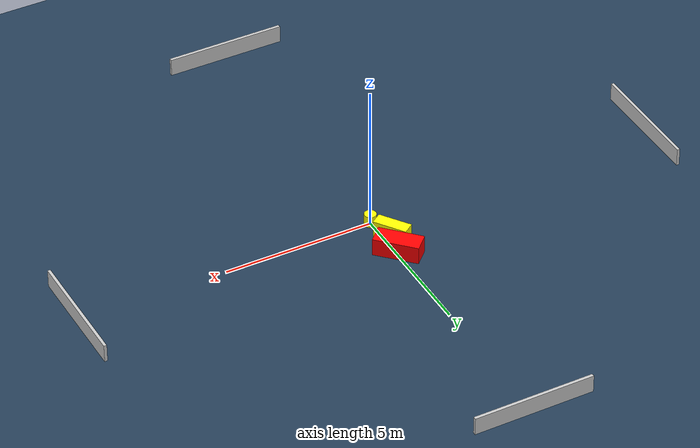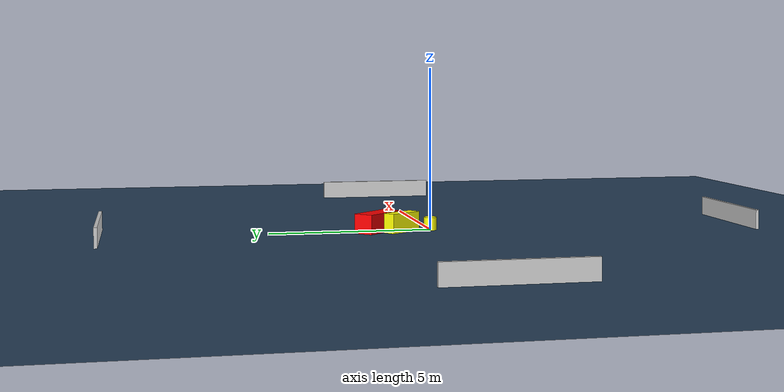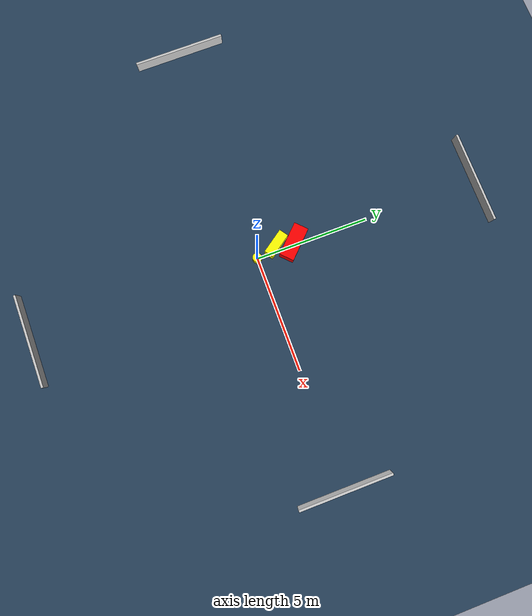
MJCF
<?xml version="1.0" ?>
<mujoco model="generated_environment">
  <option timestep="0.01" integrator="RK4" cone="elliptic"/>
  <default>
    <geom density="1"/>
  </default>
  <asset>
    <texture builtin="gradient" height="3072" name="skybox" rgb1="0.3 0.5 0.7" rgb2="0 0 0" type="skybox" width="512"/>
    <texture builtin="checker" height="300" name="groundplane" rgb1="0.2 0.3 0.4" rgb2="0.1 0.2 0.3" type="2d" width="300"/>
    <material name="groundplane" reflectance="0.2" texrepeat="5 5" texture="groundplane"/>
  </asset>
  <worldbody>
    <light dir="0 0 -1" directional="true" pos="0 0 1.5"/>
    <geom condim="3" friction="0.5 0.005 0.001" material="groundplane" name="floor" pos="0 0 0" size="0 0 0.05" type="plane"/>
    <body name="walls">
      <geom name="wall_1" condim="4" pos="-10.0 0.0 0.3" rgba="0.800000011920929 0.800000011920929 0.800000011920929 1.0" size="0.05 2.0 0.3" type="box"/>
      <geom name="wall_2" condim="4" pos="10.0 0.0 0.3" rgba="0.800000011920929 0.800000011920929 0.800000011920929 1.0" size="0.05 2.0 0.3" type="box"/>
      <geom name="wall_3" condim="4" pos="0.0 -10.0 0.3" rgba="0.800000011920929 0.800000011920929 0.800000011920929 1.0" size="2.0 0.05 0.3" type="box"/>
      <geom name="wall_4" condim="4" pos="0.0 10.0 0.3" rgba="0.800000011920929 0.800000011920929 0.800000011920929 1.0" size="2.0 0.05 0.3" type="box"/>
    </body>
    <body name="robot">
      <joint name="joint_x" type="slide" pos="0 0 0" axis="1 0 0"/>
      <joint name="joint_y" type="slide" pos="0 0 0" axis="0 1 0"/>
      <geom name="robot" type="cylinder" pos="0.0 0.0 0.2" size="0.2 0.2 0.0" mass="5.0" friction="1.0 0.005 0.0001" condim="4" rgba="1.0 1.0 0.0 1.0"/>
    </body>
    <body name="obstacle_1_movable">
      <geom name="obstacle_1_movable" condim="4" pos="-0.2570793087609669 0.9526826878452102 0.3" euler="0 0 304.98580439870904" friction="0.0 0.005 0.001" rgba="1.0 1.0 0.0 1.0" size="0.5628080162136455 0.20826753515272328 0.3" type="box" mass="0.1"/>
      <joint type="free"/>
    </body>
    <body name="obstacle_2_static">
      <geom name="obstacle_2_static" condim="4" pos="-0.07210626156267827 1.6761165265911089 0.3" euler="0 0 44.218452961768726" friction="0.0 0.005 0.001" rgba="1.0 0.0 0.0 1.0" size="0.319609452360666 0.7469995763424069 0.3" type="box"/>
    </body>
  </worldbody>
  <actuator>
    <motor name="actuator_x" joint="joint_x" gear="1" ctrlrange="-1 1"/>
    <motor name="actuator_y" joint="joint_y" gear="1" ctrlrange="-1 1"/>
  </actuator>
</mujoco>
